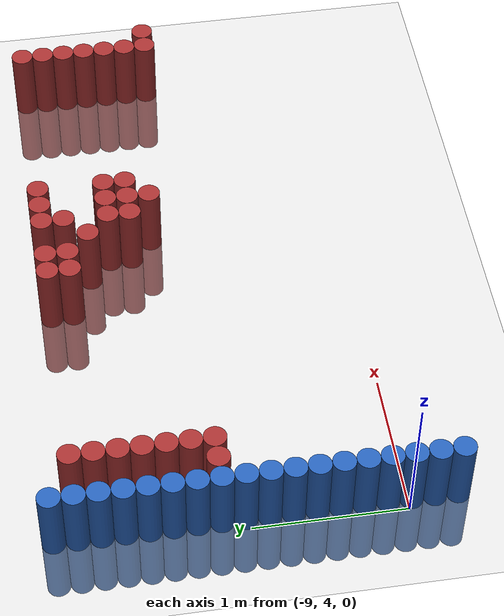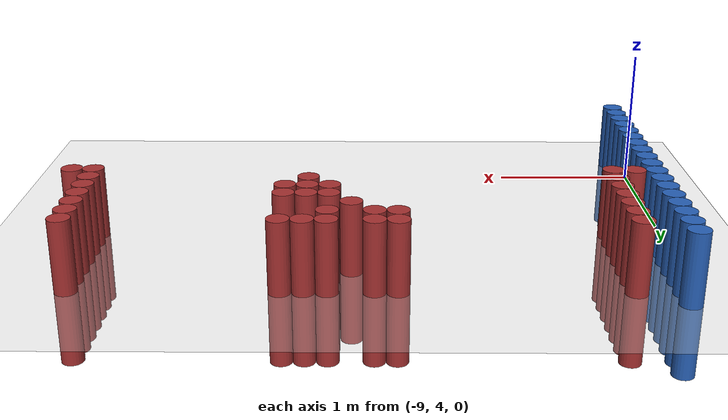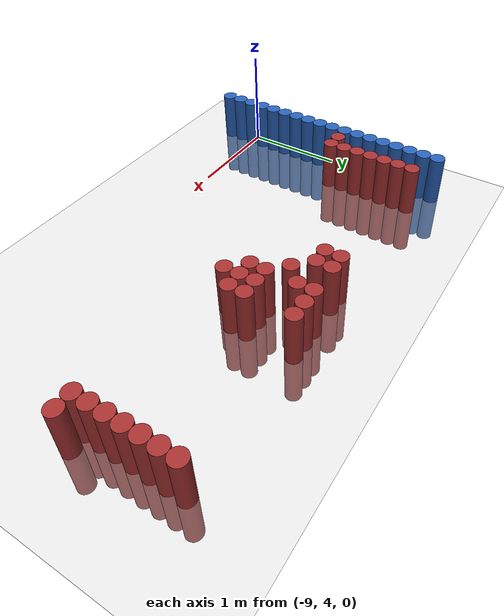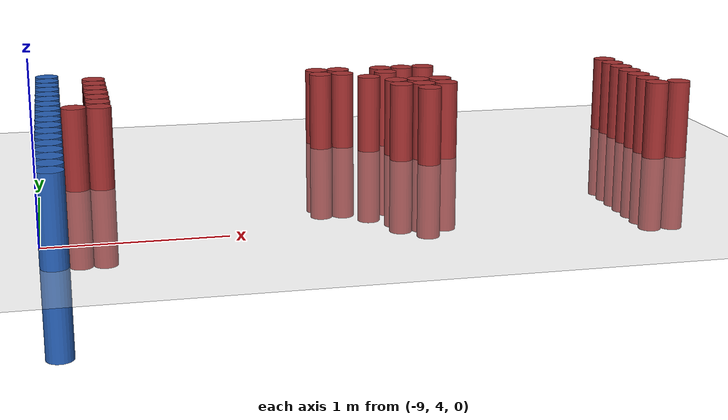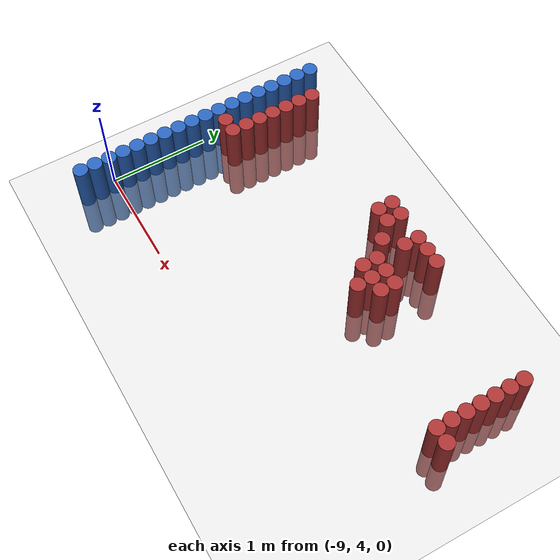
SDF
<sdf version="1.6">
 <world name="default">
  <model name="ground_plane">
   <static>1</static>
   <link name="link">
    <collision name="collision">
     <geometry><plane><normal>0 0 1</normal><size>100 100</size></plane></geometry>
     <surface><friction><ode><mu>100</mu><mu2>50</mu2></ode></friction></surface>
    </collision>
    <visual name="visual">
     <cast_shadows>0</cast_shadows>
     <geometry><plane><normal>0 0 1</normal><size>100 100</size></plane></geometry>
     <material>
      <script><uri>file://media/materials/scripts/gazebo.material</uri><name>Gazebo/Grey</name></script>
     </material>
    </visual>
   </link>
  </model>
  <model name="unit_cylinder_106">
   <static>1</static>
   <pose>-8.925000 3.675000 0.000000 0.000000 0.000000 0.000000</pose>
   <link name="link">
    <inertial>
     <mass>1</mass>
     <inertia><ixx>0.145833</ixx><ixy>0</ixy><ixz>0</ixz><iyy>0.145833</iyy><iyz>0</iyz><izz>0.125</izz></inertia>
    </inertial>
    <collision name="collision">
     <geometry><cylinder><radius>0.075000</radius><length>1</length></cylinder></geometry>
    </collision>
    <visual name="visual">
     <geometry><cylinder><radius>0.075000</radius><length>1</length></cylinder></geometry>
     <material>
      <ambient>0.152000 0.379000 0.720000 1</ambient>
      <diffuse>0.152000 0.379000 0.720000 1</diffuse>
     </material>
     <material>
      <script><name>Gazebo/Grey</name><uri>file://media/materials/scripts/gazebo.material</uri></script>
     </material>
    </visual>
   </link>
  </model>
  <model name="unit_cylinder_108">
   <static>1</static>
   <pose>-8.925000 3.825000 0.000000 0.000000 0.000000 0.000000</pose>
   <link name="link">
    <inertial>
     <mass>1</mass>
     <inertia><ixx>0.145833</ixx><ixy>0</ixy><ixz>0</ixz><iyy>0.145833</iyy><iyz>0</iyz><izz>0.125</izz></inertia>
    </inertial>
    <collision name="collision">
     <geometry><cylinder><radius>0.075000</radius><length>1</length></cylinder></geometry>
    </collision>
    <visual name="visual">
     <geometry><cylinder><radius>0.075000</radius><length>1</length></cylinder></geometry>
     <material>
      <ambient>0.152000 0.379000 0.720000 1</ambient>
      <diffuse>0.152000 0.379000 0.720000 1</diffuse>
     </material>
     <material>
      <script><name>Gazebo/Grey</name><uri>file://media/materials/scripts/gazebo.material</uri></script>
     </material>
    </visual>
   </link>
  </model>
  <model name="unit_cylinder_110">
   <static>1</static>
   <pose>-8.925000 3.975000 0.000000 0.000000 0.000000 0.000000</pose>
   <link name="link">
    <inertial>
     <mass>1</mass>
     <inertia><ixx>0.145833</ixx><ixy>0</ixy><ixz>0</ixz><iyy>0.145833</iyy><iyz>0</iyz><izz>0.125</izz></inertia>
    </inertial>
    <collision name="collision">
     <geometry><cylinder><radius>0.075000</radius><length>1</length></cylinder></geometry>
    </collision>
    <visual name="visual">
     <geometry><cylinder><radius>0.075000</radius><length>1</length></cylinder></geometry>
     <material>
      <ambient>0.152000 0.379000 0.720000 1</ambient>
      <diffuse>0.152000 0.379000 0.720000 1</diffuse>
     </material>
     <material>
      <script><name>Gazebo/Grey</name><uri>file://media/materials/scripts/gazebo.material</uri></script>
     </material>
    </visual>
   </link>
  </model>
  <model name="unit_cylinder_112">
   <static>1</static>
   <pose>-8.925000 4.125000 0.000000 0.000000 0.000000 0.000000</pose>
   <link name="link">
    <inertial>
     <mass>1</mass>
     <inertia><ixx>0.145833</ixx><ixy>0</ixy><ixz>0</ixz><iyy>0.145833</iyy><iyz>0</iyz><izz>0.125</izz></inertia>
    </inertial>
    <collision name="collision">
     <geometry><cylinder><radius>0.075000</radius><length>1</length></cylinder></geometry>
    </collision>
    <visual name="visual">
     <geometry><cylinder><radius>0.075000</radius><length>1</length></cylinder></geometry>
     <material>
      <ambient>0.152000 0.379000 0.720000 1</ambient>
      <diffuse>0.152000 0.379000 0.720000 1</diffuse>
     </material>
     <material>
      <script><name>Gazebo/Grey</name><uri>file://media/materials/scripts/gazebo.material</uri></script>
     </material>
    </visual>
   </link>
  </model>
  <model name="unit_cylinder_114">
   <static>1</static>
   <pose>-8.925000 4.275000 0.000000 0.000000 0.000000 0.000000</pose>
   <link name="link">
    <inertial>
     <mass>1</mass>
     <inertia><ixx>0.145833</ixx><ixy>0</ixy><ixz>0</ixz><iyy>0.145833</iyy><iyz>0</iyz><izz>0.125</izz></inertia>
    </inertial>
    <collision name="collision">
     <geometry><cylinder><radius>0.075000</radius><length>1</length></cylinder></geometry>
    </collision>
    <visual name="visual">
     <geometry><cylinder><radius>0.075000</radius><length>1</length></cylinder></geometry>
     <material>
      <ambient>0.152000 0.379000 0.720000 1</ambient>
      <diffuse>0.152000 0.379000 0.720000 1</diffuse>
     </material>
     <material>
      <script><name>Gazebo/Grey</name><uri>file://media/materials/scripts/gazebo.material</uri></script>
     </material>
    </visual>
   </link>
  </model>
  <model name="unit_cylinder_116">
   <static>1</static>
   <pose>-8.925000 4.425000 0.000000 0.000000 0.000000 0.000000</pose>
   <link name="link">
    <inertial>
     <mass>1</mass>
     <inertia><ixx>0.145833</ixx><ixy>0</ixy><ixz>0</ixz><iyy>0.145833</iyy><iyz>0</iyz><izz>0.125</izz></inertia>
    </inertial>
    <collision name="collision">
     <geometry><cylinder><radius>0.075000</radius><length>1</length></cylinder></geometry>
    </collision>
    <visual name="visual">
     <geometry><cylinder><radius>0.075000</radius><length>1</length></cylinder></geometry>
     <material>
      <ambient>0.152000 0.379000 0.720000 1</ambient>
      <diffuse>0.152000 0.379000 0.720000 1</diffuse>
     </material>
     <material>
      <script><name>Gazebo/Grey</name><uri>file://media/materials/scripts/gazebo.material</uri></script>
     </material>
    </visual>
   </link>
  </model>
  <model name="unit_cylinder_118">
   <static>1</static>
   <pose>-8.925000 4.575000 0.000000 0.000000 0.000000 0.000000</pose>
   <link name="link">
    <inertial>
     <mass>1</mass>
     <inertia><ixx>0.145833</ixx><ixy>0</ixy><ixz>0</ixz><iyy>0.145833</iyy><iyz>0</iyz><izz>0.125</izz></inertia>
    </inertial>
    <collision name="collision">
     <geometry><cylinder><radius>0.075000</radius><length>1</length></cylinder></geometry>
    </collision>
    <visual name="visual">
     <geometry><cylinder><radius>0.075000</radius><length>1</length></cylinder></geometry>
     <material>
      <ambient>0.152000 0.379000 0.720000 1</ambient>
      <diffuse>0.152000 0.379000 0.720000 1</diffuse>
     </material>
     <material>
      <script><name>Gazebo/Grey</name><uri>file://media/materials/scripts/gazebo.material</uri></script>
     </material>
    </visual>
   </link>
  </model>
  <model name="unit_cylinder_120">
   <static>1</static>
   <pose>-8.925000 4.725000 0.000000 0.000000 0.000000 0.000000</pose>
   <link name="link">
    <inertial>
     <mass>1</mass>
     <inertia><ixx>0.145833</ixx><ixy>0</ixy><ixz>0</ixz><iyy>0.145833</iyy><iyz>0</iyz><izz>0.125</izz></inertia>
    </inertial>
    <collision name="collision">
     <geometry><cylinder><radius>0.075000</radius><length>1</length></cylinder></geometry>
    </collision>
    <visual name="visual">
     <geometry><cylinder><radius>0.075000</radius><length>1</length></cylinder></geometry>
     <material>
      <ambient>0.152000 0.379000 0.720000 1</ambient>
      <diffuse>0.152000 0.379000 0.720000 1</diffuse>
     </material>
     <material>
      <script><name>Gazebo/Grey</name><uri>file://media/materials/scripts/gazebo.material</uri></script>
     </material>
    </visual>
   </link>
  </model>
  <model name="unit_cylinder_122">
   <static>1</static>
   <pose>-8.925000 4.875000 0.000000 0.000000 0.000000 0.000000</pose>
   <link name="link">
    <inertial>
     <mass>1</mass>
     <inertia><ixx>0.145833</ixx><ixy>0</ixy><ixz>0</ixz><iyy>0.145833</iyy><iyz>0</iyz><izz>0.125</izz></inertia>
    </inertial>
    <collision name="collision">
     <geometry><cylinder><radius>0.075000</radius><length>1</length></cylinder></geometry>
    </collision>
    <visual name="visual">
     <geometry><cylinder><radius>0.075000</radius><length>1</length></cylinder></geometry>
     <material>
      <ambient>0.152000 0.379000 0.720000 1</ambient>
      <diffuse>0.152000 0.379000 0.720000 1</diffuse>
     </material>
     <material>
      <script><name>Gazebo/Grey</name><uri>file://media/materials/scripts/gazebo.material</uri></script>
     </material>
    </visual>
   </link>
  </model>
  <model name="unit_cylinder_124">
   <static>1</static>
   <pose>-8.925000 5.025000 0.000000 0.000000 0.000000 0.000000</pose>
   <link name="link">
    <inertial>
     <mass>1</mass>
     <inertia><ixx>0.145833</ixx><ixy>0</ixy><ixz>0</ixz><iyy>0.145833</iyy><iyz>0</iyz><izz>0.125</izz></inertia>
    </inertial>
    <collision name="collision">
     <geometry><cylinder><radius>0.075000</radius><length>1</length></cylinder></geometry>
    </collision>
    <visual name="visual">
     <geometry><cylinder><radius>0.075000</radius><length>1</length></cylinder></geometry>
     <material>
      <ambient>0.152000 0.379000 0.720000 1</ambient>
      <diffuse>0.152000 0.379000 0.720000 1</diffuse>
     </material>
     <material>
      <script><name>Gazebo/Grey</name><uri>file://media/materials/scripts/gazebo.material</uri></script>
     </material>
    </visual>
   </link>
  </model>
  <model name="unit_cylinder_125">
   <static>1</static>
   <pose>-8.925000 5.175000 0.000000 0.000000 0.000000 0.000000</pose>
   <link name="link">
    <inertial>
     <mass>1</mass>
     <inertia><ixx>0.145833</ixx><ixy>0</ixy><ixz>0</ixz><iyy>0.145833</iyy><iyz>0</iyz><izz>0.125</izz></inertia>
    </inertial>
    <collision name="collision">
     <geometry><cylinder><radius>0.075000</radius><length>1</length></cylinder></geometry>
    </collision>
    <visual name="visual">
     <geometry><cylinder><radius>0.075000</radius><length>1</length></cylinder></geometry>
     <material>
      <ambient>0.152000 0.379000 0.720000 1</ambient>
      <diffuse>0.152000 0.379000 0.720000 1</diffuse>
     </material>
     <material>
      <script><name>Gazebo/Grey</name><uri>file://media/materials/scripts/gazebo.material</uri></script>
     </material>
    </visual>
   </link>
  </model>
  <model name="unit_cylinder_126">
   <static>1</static>
   <pose>-8.925000 5.325000 0.000000 0.000000 0.000000 0.000000</pose>
   <link name="link">
    <inertial>
     <mass>1</mass>
     <inertia><ixx>0.145833</ixx><ixy>0</ixy><ixz>0</ixz><iyy>0.145833</iyy><iyz>0</iyz><izz>0.125</izz></inertia>
    </inertial>
    <collision name="collision">
     <geometry><cylinder><radius>0.075000</radius><length>1</length></cylinder></geometry>
    </collision>
    <visual name="visual">
     <geometry><cylinder><radius>0.075000</radius><length>1</length></cylinder></geometry>
     <material>
      <ambient>0.152000 0.379000 0.720000 1</ambient>
      <diffuse>0.152000 0.379000 0.720000 1</diffuse>
     </material>
     <material>
      <script><name>Gazebo/Grey</name><uri>file://media/materials/scripts/gazebo.material</uri></script>
     </material>
    </visual>
   </link>
  </model>
  <model name="unit_cylinder_127">
   <static>1</static>
   <pose>-8.925000 5.475000 0.000000 0.000000 0.000000 0.000000</pose>
   <link name="link">
    <inertial>
     <mass>1</mass>
     <inertia><ixx>0.145833</ixx><ixy>0</ixy><ixz>0</ixz><iyy>0.145833</iyy><iyz>0</iyz><izz>0.125</izz></inertia>
    </inertial>
    <collision name="collision">
     <geometry><cylinder><radius>0.075000</radius><length>1</length></cylinder></geometry>
    </collision>
    <visual name="visual">
     <geometry><cylinder><radius>0.075000</radius><length>1</length></cylinder></geometry>
     <material>
      <ambient>0.152000 0.379000 0.720000 1</ambient>
      <diffuse>0.152000 0.379000 0.720000 1</diffuse>
     </material>
     <material>
      <script><name>Gazebo/Grey</name><uri>file://media/materials/scripts/gazebo.material</uri></script>
     </material>
    </visual>
   </link>
  </model>
  <model name="unit_cylinder_128">
   <static>1</static>
   <pose>-8.925000 5.625000 0.000000 0.000000 0.000000 0.000000</pose>
   <link name="link">
    <inertial>
     <mass>1</mass>
     <inertia><ixx>0.145833</ixx><ixy>0</ixy><ixz>0</ixz><iyy>0.145833</iyy><iyz>0</iyz><izz>0.125</izz></inertia>
    </inertial>
    <collision name="collision">
     <geometry><cylinder><radius>0.075000</radius><length>1</length></cylinder></geometry>
    </collision>
    <visual name="visual">
     <geometry><cylinder><radius>0.075000</radius><length>1</length></cylinder></geometry>
     <material>
      <ambient>0.152000 0.379000 0.720000 1</ambient>
      <diffuse>0.152000 0.379000 0.720000 1</diffuse>
     </material>
     <material>
      <script><name>Gazebo/Grey</name><uri>file://media/materials/scripts/gazebo.material</uri></script>
     </material>
    </visual>
   </link>
  </model>
  <model name="unit_cylinder_129">
   <static>1</static>
   <pose>-8.925000 5.775000 0.000000 0.000000 0.000000 0.000000</pose>
   <link name="link">
    <inertial>
     <mass>1</mass>
     <inertia><ixx>0.145833</ixx><ixy>0</ixy><ixz>0</ixz><iyy>0.145833</iyy><iyz>0</iyz><izz>0.125</izz></inertia>
    </inertial>
    <collision name="collision">
     <geometry><cylinder><radius>0.075000</radius><length>1</length></cylinder></geometry>
    </collision>
    <visual name="visual">
     <geometry><cylinder><radius>0.075000</radius><length>1</length></cylinder></geometry>
     <material>
      <ambient>0.152000 0.379000 0.720000 1</ambient>
      <diffuse>0.152000 0.379000 0.720000 1</diffuse>
     </material>
     <material>
      <script><name>Gazebo/Grey</name><uri>file://media/materials/scripts/gazebo.material</uri></script>
     </material>
    </visual>
   </link>
  </model>
  <model name="unit_cylinder_130">
   <static>1</static>
   <pose>-8.925000 5.925000 0.000000 0.000000 0.000000 0.000000</pose>
   <link name="link">
    <inertial>
     <mass>1</mass>
     <inertia><ixx>0.145833</ixx><ixy>0</ixy><ixz>0</ixz><iyy>0.145833</iyy><iyz>0</iyz><izz>0.125</izz></inertia>
    </inertial>
    <collision name="collision">
     <geometry><cylinder><radius>0.075000</radius><length>1</length></cylinder></geometry>
    </collision>
    <visual name="visual">
     <geometry><cylinder><radius>0.075000</radius><length>1</length></cylinder></geometry>
     <material>
      <ambient>0.152000 0.379000 0.720000 1</ambient>
      <diffuse>0.152000 0.379000 0.720000 1</diffuse>
     </material>
     <material>
      <script><name>Gazebo/Grey</name><uri>file://media/materials/scripts/gazebo.material</uri></script>
     </material>
    </visual>
   </link>
  </model>
  <model name="unit_cylinder_131">
   <static>1</static>
   <pose>-8.925000 6.075000 0.000000 0.000000 0.000000 0.000000</pose>
   <link name="link">
    <inertial>
     <mass>1</mass>
     <inertia><ixx>0.145833</ixx><ixy>0</ixy><ixz>0</ixz><iyy>0.145833</iyy><iyz>0</iyz><izz>0.125</izz></inertia>
    </inertial>
    <collision name="collision">
     <geometry><cylinder><radius>0.075000</radius><length>1</length></cylinder></geometry>
    </collision>
    <visual name="visual">
     <geometry><cylinder><radius>0.075000</radius><length>1</length></cylinder></geometry>
     <material>
      <ambient>0.152000 0.379000 0.720000 1</ambient>
      <diffuse>0.152000 0.379000 0.720000 1</diffuse>
     </material>
     <material>
      <script><name>Gazebo/Grey</name><uri>file://media/materials/scripts/gazebo.material</uri></script>
     </material>
    </visual>
   </link>
  </model>
  <model name="unit_cylinder_132">
   <static>1</static>
   <pose>-8.925000 6.225000 0.000000 0.000000 0.000000 0.000000</pose>
   <link name="link">
    <inertial>
     <mass>1</mass>
     <inertia><ixx>0.145833</ixx><ixy>0</ixy><ixz>0</ixz><iyy>0.145833</iyy><iyz>0</iyz><izz>0.125</izz></inertia>
    </inertial>
    <collision name="collision">
     <geometry><cylinder><radius>0.075000</radius><length>1</length></cylinder></geometry>
    </collision>
    <visual name="visual">
     <geometry><cylinder><radius>0.075000</radius><length>1</length></cylinder></geometry>
     <material>
      <ambient>0.152000 0.379000 0.720000 1</ambient>
      <diffuse>0.152000 0.379000 0.720000 1</diffuse>
     </material>
     <material>
      <script><name>Gazebo/Grey</name><uri>file://media/materials/scripts/gazebo.material</uri></script>
     </material>
    </visual>
   </link>
  </model>
  <model name="unit_cylinder_155">
   <static>1</static>
   <pose>-8.775000 5.175000 0.000000 0.000000 0.000000 0.000000</pose>
   <link name="link">
    <inertial>
     <mass>1</mass>
     <inertia><ixx>0.145833</ixx><ixy>0</ixy><ixz>0</ixz><iyy>0.145833</iyy><iyz>0</iyz><izz>0.125</izz></inertia>
    </inertial>
    <collision name="collision">
     <geometry><cylinder><radius>0.075000</radius><length>1</length></cylinder></geometry>
    </collision>
    <visual name="visual">
     <geometry><cylinder><radius>0.075000</radius><length>1</length></cylinder></geometry>
     <material>
      <ambient>0.648000 0.192000 0.192000 1</ambient>
      <diffuse>0.648000 0.192000 0.192000 1</diffuse>
     </material>
     <material>
      <script><name>Gazebo/Grey</name><uri>file://media/materials/scripts/gazebo.material</uri></script>
     </material>
    </visual>
   </link>
  </model>
  <model name="unit_cylinder_157">
   <static>1</static>
   <pose>-8.625000 5.175000 0.000000 0.000000 0.000000 0.000000</pose>
   <link name="link">
    <inertial>
     <mass>1</mass>
     <inertia><ixx>0.145833</ixx><ixy>0</ixy><ixz>0</ixz><iyy>0.145833</iyy><iyz>0</iyz><izz>0.125</izz></inertia>
    </inertial>
    <collision name="collision">
     <geometry><cylinder><radius>0.075000</radius><length>1</length></cylinder></geometry>
    </collision>
    <visual name="visual">
     <geometry><cylinder><radius>0.075000</radius><length>1</length></cylinder></geometry>
     <material>
      <ambient>0.648000 0.192000 0.192000 1</ambient>
      <diffuse>0.648000 0.192000 0.192000 1</diffuse>
     </material>
     <material>
      <script><name>Gazebo/Grey</name><uri>file://media/materials/scripts/gazebo.material</uri></script>
     </material>
    </visual>
   </link>
  </model>
  <model name="unit_cylinder_158">
   <static>1</static>
   <pose>-8.625000 5.325000 0.000000 0.000000 0.000000 0.000000</pose>
   <link name="link">
    <inertial>
     <mass>1</mass>
     <inertia><ixx>0.145833</ixx><ixy>0</ixy><ixz>0</ixz><iyy>0.145833</iyy><iyz>0</iyz><izz>0.125</izz></inertia>
    </inertial>
    <collision name="collision">
     <geometry><cylinder><radius>0.075000</radius><length>1</length></cylinder></geometry>
    </collision>
    <visual name="visual">
     <geometry><cylinder><radius>0.075000</radius><length>1</length></cylinder></geometry>
     <material>
      <ambient>0.648000 0.192000 0.192000 1</ambient>
      <diffuse>0.648000 0.192000 0.192000 1</diffuse>
     </material>
     <material>
      <script><name>Gazebo/Grey</name><uri>file://media/materials/scripts/gazebo.material</uri></script>
     </material>
    </visual>
   </link>
  </model>
  <model name="unit_cylinder_159">
   <static>1</static>
   <pose>-8.625000 5.475000 0.000000 0.000000 0.000000 0.000000</pose>
   <link name="link">
    <inertial>
     <mass>1</mass>
     <inertia><ixx>0.145833</ixx><ixy>0</ixy><ixz>0</ixz><iyy>0.145833</iyy><iyz>0</iyz><izz>0.125</izz></inertia>
    </inertial>
    <collision name="collision">
     <geometry><cylinder><radius>0.075000</radius><length>1</length></cylinder></geometry>
    </collision>
    <visual name="visual">
     <geometry><cylinder><radius>0.075000</radius><length>1</length></cylinder></geometry>
     <material>
      <ambient>0.648000 0.192000 0.192000 1</ambient>
      <diffuse>0.648000 0.192000 0.192000 1</diffuse>
     </material>
     <material>
      <script><name>Gazebo/Grey</name><uri>file://media/materials/scripts/gazebo.material</uri></script>
     </material>
    </visual>
   </link>
  </model>
  <model name="unit_cylinder_160">
   <static>1</static>
   <pose>-8.625000 5.625000 0.000000 0.000000 0.000000 0.000000</pose>
   <link name="link">
    <inertial>
     <mass>1</mass>
     <inertia><ixx>0.145833</ixx><ixy>0</ixy><ixz>0</ixz><iyy>0.145833</iyy><iyz>0</iyz><izz>0.125</izz></inertia>
    </inertial>
    <collision name="collision">
     <geometry><cylinder><radius>0.075000</radius><length>1</length></cylinder></geometry>
    </collision>
    <visual name="visual">
     <geometry><cylinder><radius>0.075000</radius><length>1</length></cylinder></geometry>
     <material>
      <ambient>0.648000 0.192000 0.192000 1</ambient>
      <diffuse>0.648000 0.192000 0.192000 1</diffuse>
     </material>
     <material>
      <script><name>Gazebo/Grey</name><uri>file://media/materials/scripts/gazebo.material</uri></script>
     </material>
    </visual>
   </link>
  </model>
  <model name="unit_cylinder_161">
   <static>1</static>
   <pose>-8.625000 5.775000 0.000000 0.000000 0.000000 0.000000</pose>
   <link name="link">
    <inertial>
     <mass>1</mass>
     <inertia><ixx>0.145833</ixx><ixy>0</ixy><ixz>0</ixz><iyy>0.145833</iyy><iyz>0</iyz><izz>0.125</izz></inertia>
    </inertial>
    <collision name="collision">
     <geometry><cylinder><radius>0.075000</radius><length>1</length></cylinder></geometry>
    </collision>
    <visual name="visual">
     <geometry><cylinder><radius>0.075000</radius><length>1</length></cylinder></geometry>
     <material>
      <ambient>0.648000 0.192000 0.192000 1</ambient>
      <diffuse>0.648000 0.192000 0.192000 1</diffuse>
     </material>
     <material>
      <script><name>Gazebo/Grey</name><uri>file://media/materials/scripts/gazebo.material</uri></script>
     </material>
    </visual>
   </link>
  </model>
  <model name="unit_cylinder_162">
   <static>1</static>
   <pose>-8.625000 5.925000 0.000000 0.000000 0.000000 0.000000</pose>
   <link name="link">
    <inertial>
     <mass>1</mass>
     <inertia><ixx>0.145833</ixx><ixy>0</ixy><ixz>0</ixz><iyy>0.145833</iyy><iyz>0</iyz><izz>0.125</izz></inertia>
    </inertial>
    <collision name="collision">
     <geometry><cylinder><radius>0.075000</radius><length>1</length></cylinder></geometry>
    </collision>
    <visual name="visual">
     <geometry><cylinder><radius>0.075000</radius><length>1</length></cylinder></geometry>
     <material>
      <ambient>0.648000 0.192000 0.192000 1</ambient>
      <diffuse>0.648000 0.192000 0.192000 1</diffuse>
     </material>
     <material>
      <script><name>Gazebo/Grey</name><uri>file://media/materials/scripts/gazebo.material</uri></script>
     </material>
    </visual>
   </link>
  </model>
  <model name="unit_cylinder_163">
   <static>1</static>
   <pose>-8.625000 6.075000 0.000000 0.000000 0.000000 0.000000</pose>
   <link name="link">
    <inertial>
     <mass>1</mass>
     <inertia><ixx>0.145833</ixx><ixy>0</ixy><ixz>0</ixz><iyy>0.145833</iyy><iyz>0</iyz><izz>0.125</izz></inertia>
    </inertial>
    <collision name="collision">
     <geometry><cylinder><radius>0.075000</radius><length>1</length></cylinder></geometry>
    </collision>
    <visual name="visual">
     <geometry><cylinder><radius>0.075000</radius><length>1</length></cylinder></geometry>
     <material>
      <ambient>0.648000 0.192000 0.192000 1</ambient>
      <diffuse>0.648000 0.192000 0.192000 1</diffuse>
     </material>
     <material>
      <script><name>Gazebo/Grey</name><uri>file://media/materials/scripts/gazebo.material</uri></script>
     </material>
    </visual>
   </link>
  </model>
  <model name="unit_cylinder_204">
   <static>1</static>
   <pose>-7.125000 5.925000 0.000000 0.000000 0.000000 0.000000</pose>
   <link name="link">
    <inertial>
     <mass>1</mass>
     <inertia><ixx>0.145833</ixx><ixy>0</ixy><ixz>0</ixz><iyy>0.145833</iyy><iyz>0</iyz><izz>0.125</izz></inertia>
    </inertial>
    <collision name="collision">
     <geometry><cylinder><radius>0.075000</radius><length>1</length></cylinder></geometry>
    </collision>
    <visual name="visual">
     <geometry><cylinder><radius>0.075000</radius><length>1</length></cylinder></geometry>
     <material>
      <ambient>0.648000 0.192000 0.192000 1</ambient>
      <diffuse>0.648000 0.192000 0.192000 1</diffuse>
     </material>
     <material>
      <script><name>Gazebo/Grey</name><uri>file://media/materials/scripts/gazebo.material</uri></script>
     </material>
    </visual>
   </link>
  </model>
  <model name="unit_cylinder_205">
   <static>1</static>
   <pose>-7.125000 6.075000 0.000000 0.000000 0.000000 0.000000</pose>
   <link name="link">
    <inertial>
     <mass>1</mass>
     <inertia><ixx>0.145833</ixx><ixy>0</ixy><ixz>0</ixz><iyy>0.145833</iyy><iyz>0</iyz><izz>0.125</izz></inertia>
    </inertial>
    <collision name="collision">
     <geometry><cylinder><radius>0.075000</radius><length>1</length></cylinder></geometry>
    </collision>
    <visual name="visual">
     <geometry><cylinder><radius>0.075000</radius><length>1</length></cylinder></geometry>
     <material>
      <ambient>0.648000 0.192000 0.192000 1</ambient>
      <diffuse>0.648000 0.192000 0.192000 1</diffuse>
     </material>
     <material>
      <script><name>Gazebo/Grey</name><uri>file://media/materials/scripts/gazebo.material</uri></script>
     </material>
    </visual>
   </link>
  </model>
  <model name="unit_cylinder_214">
   <static>1</static>
   <pose>-6.975000 5.925000 0.000000 0.000000 0.000000 0.000000</pose>
   <link name="link">
    <inertial>
     <mass>1</mass>
     <inertia><ixx>0.145833</ixx><ixy>0</ixy><ixz>0</ixz><iyy>0.145833</iyy><iyz>0</iyz><izz>0.125</izz></inertia>
    </inertial>
    <collision name="collision">
     <geometry><cylinder><radius>0.075000</radius><length>1</length></cylinder></geometry>
    </collision>
    <visual name="visual">
     <geometry><cylinder><radius>0.075000</radius><length>1</length></cylinder></geometry>
     <material>
      <ambient>0.648000 0.192000 0.192000 1</ambient>
      <diffuse>0.648000 0.192000 0.192000 1</diffuse>
     </material>
     <material>
      <script><name>Gazebo/Grey</name><uri>file://media/materials/scripts/gazebo.material</uri></script>
     </material>
    </visual>
   </link>
  </model>
  <model name="unit_cylinder_215">
   <static>1</static>
   <pose>-6.975000 6.075000 0.000000 0.000000 0.000000 0.000000</pose>
   <link name="link">
    <inertial>
     <mass>1</mass>
     <inertia><ixx>0.145833</ixx><ixy>0</ixy><ixz>0</ixz><iyy>0.145833</iyy><iyz>0</iyz><izz>0.125</izz></inertia>
    </inertial>
    <collision name="collision">
     <geometry><cylinder><radius>0.075000</radius><length>1</length></cylinder></geometry>
    </collision>
    <visual name="visual">
     <geometry><cylinder><radius>0.075000</radius><length>1</length></cylinder></geometry>
     <material>
      <ambient>0.648000 0.192000 0.192000 1</ambient>
      <diffuse>0.648000 0.192000 0.192000 1</diffuse>
     </material>
     <material>
      <script><name>Gazebo/Grey</name><uri>file://media/materials/scripts/gazebo.material</uri></script>
     </material>
    </visual>
   </link>
  </model>
  <model name="unit_cylinder_225">
   <static>1</static>
   <pose>-6.825000 5.775000 0.000000 0.000000 0.000000 0.000000</pose>
   <link name="link">
    <inertial>
     <mass>1</mass>
     <inertia><ixx>0.145833</ixx><ixy>0</ixy><ixz>0</ixz><iyy>0.145833</iyy><iyz>0</iyz><izz>0.125</izz></inertia>
    </inertial>
    <collision name="collision">
     <geometry><cylinder><radius>0.075000</radius><length>1</length></cylinder></geometry>
    </collision>
    <visual name="visual">
     <geometry><cylinder><radius>0.075000</radius><length>1</length></cylinder></geometry>
     <material>
      <ambient>0.648000 0.192000 0.192000 1</ambient>
      <diffuse>0.648000 0.192000 0.192000 1</diffuse>
     </material>
     <material>
      <script><name>Gazebo/Grey</name><uri>file://media/materials/scripts/gazebo.material</uri></script>
     </material>
    </visual>
   </link>
  </model>
  <model name="unit_cylinder_234">
   <static>1</static>
   <pose>-6.675000 5.475000 0.000000 0.000000 0.000000 0.000000</pose>
   <link name="link">
    <inertial>
     <mass>1</mass>
     <inertia><ixx>0.145833</ixx><ixy>0</ixy><ixz>0</ixz><iyy>0.145833</iyy><iyz>0</iyz><izz>0.125</izz></inertia>
    </inertial>
    <collision name="collision">
     <geometry><cylinder><radius>0.075000</radius><length>1</length></cylinder></geometry>
    </collision>
    <visual name="visual">
     <geometry><cylinder><radius>0.075000</radius><length>1</length></cylinder></geometry>
     <material>
      <ambient>0.648000 0.192000 0.192000 1</ambient>
      <diffuse>0.648000 0.192000 0.192000 1</diffuse>
     </material>
     <material>
      <script><name>Gazebo/Grey</name><uri>file://media/materials/scripts/gazebo.material</uri></script>
     </material>
    </visual>
   </link>
  </model>
  <model name="unit_cylinder_235">
   <static>1</static>
   <pose>-6.675000 5.625000 0.000000 0.000000 0.000000 0.000000</pose>
   <link name="link">
    <inertial>
     <mass>1</mass>
     <inertia><ixx>0.145833</ixx><ixy>0</ixy><ixz>0</ixz><iyy>0.145833</iyy><iyz>0</iyz><izz>0.125</izz></inertia>
    </inertial>
    <collision name="collision">
     <geometry><cylinder><radius>0.075000</radius><length>1</length></cylinder></geometry>
    </collision>
    <visual name="visual">
     <geometry><cylinder><radius>0.075000</radius><length>1</length></cylinder></geometry>
     <material>
      <ambient>0.648000 0.192000 0.192000 1</ambient>
      <diffuse>0.648000 0.192000 0.192000 1</diffuse>
     </material>
     <material>
      <script><name>Gazebo/Grey</name><uri>file://media/materials/scripts/gazebo.material</uri></script>
     </material>
    </visual>
   </link>
  </model>
  <model name="unit_cylinder_236">
   <static>1</static>
   <pose>-6.675000 5.925000 0.000000 0.000000 0.000000 0.000000</pose>
   <link name="link">
    <inertial>
     <mass>1</mass>
     <inertia><ixx>0.145833</ixx><ixy>0</ixy><ixz>0</ixz><iyy>0.145833</iyy><iyz>0</iyz><izz>0.125</izz></inertia>
    </inertial>
    <collision name="collision">
     <geometry><cylinder><radius>0.075000</radius><length>1</length></cylinder></geometry>
    </collision>
    <visual name="visual">
     <geometry><cylinder><radius>0.075000</radius><length>1</length></cylinder></geometry>
     <material>
      <ambient>0.648000 0.192000 0.192000 1</ambient>
      <diffuse>0.648000 0.192000 0.192000 1</diffuse>
     </material>
     <material>
      <script><name>Gazebo/Grey</name><uri>file://media/materials/scripts/gazebo.material</uri></script>
     </material>
    </visual>
   </link>
  </model>
  <model name="unit_cylinder_237">
   <static>1</static>
   <pose>-6.675000 6.075000 0.000000 0.000000 0.000000 0.000000</pose>
   <link name="link">
    <inertial>
     <mass>1</mass>
     <inertia><ixx>0.145833</ixx><ixy>0</ixy><ixz>0</ixz><iyy>0.145833</iyy><iyz>0</iyz><izz>0.125</izz></inertia>
    </inertial>
    <collision name="collision">
     <geometry><cylinder><radius>0.075000</radius><length>1</length></cylinder></geometry>
    </collision>
    <visual name="visual">
     <geometry><cylinder><radius>0.075000</radius><length>1</length></cylinder></geometry>
     <material>
      <ambient>0.648000 0.192000 0.192000 1</ambient>
      <diffuse>0.648000 0.192000 0.192000 1</diffuse>
     </material>
     <material>
      <script><name>Gazebo/Grey</name><uri>file://media/materials/scripts/gazebo.material</uri></script>
     </material>
    </visual>
   </link>
  </model>
  <model name="unit_cylinder_245">
   <static>1</static>
   <pose>-6.525000 5.325000 0.000000 0.000000 0.000000 0.000000</pose>
   <link name="link">
    <inertial>
     <mass>1</mass>
     <inertia><ixx>0.145833</ixx><ixy>0</ixy><ixz>0</ixz><iyy>0.145833</iyy><iyz>0</iyz><izz>0.125</izz></inertia>
    </inertial>
    <collision name="collision">
     <geometry><cylinder><radius>0.075000</radius><length>1</length></cylinder></geometry>
    </collision>
    <visual name="visual">
     <geometry><cylinder><radius>0.075000</radius><length>1</length></cylinder></geometry>
     <material>
      <ambient>0.648000 0.192000 0.192000 1</ambient>
      <diffuse>0.648000 0.192000 0.192000 1</diffuse>
     </material>
     <material>
      <script><name>Gazebo/Grey</name><uri>file://media/materials/scripts/gazebo.material</uri></script>
     </material>
    </visual>
   </link>
  </model>
  <model name="unit_cylinder_246">
   <static>1</static>
   <pose>-6.525000 5.475000 0.000000 0.000000 0.000000 0.000000</pose>
   <link name="link">
    <inertial>
     <mass>1</mass>
     <inertia><ixx>0.145833</ixx><ixy>0</ixy><ixz>0</ixz><iyy>0.145833</iyy><iyz>0</iyz><izz>0.125</izz></inertia>
    </inertial>
    <collision name="collision">
     <geometry><cylinder><radius>0.075000</radius><length>1</length></cylinder></geometry>
    </collision>
    <visual name="visual">
     <geometry><cylinder><radius>0.075000</radius><length>1</length></cylinder></geometry>
     <material>
      <ambient>0.648000 0.192000 0.192000 1</ambient>
      <diffuse>0.648000 0.192000 0.192000 1</diffuse>
     </material>
     <material>
      <script><name>Gazebo/Grey</name><uri>file://media/materials/scripts/gazebo.material</uri></script>
     </material>
    </visual>
   </link>
  </model>
  <model name="unit_cylinder_247">
   <static>1</static>
   <pose>-6.525000 5.625000 0.000000 0.000000 0.000000 0.000000</pose>
   <link name="link">
    <inertial>
     <mass>1</mass>
     <inertia><ixx>0.145833</ixx><ixy>0</ixy><ixz>0</ixz><iyy>0.145833</iyy><iyz>0</iyz><izz>0.125</izz></inertia>
    </inertial>
    <collision name="collision">
     <geometry><cylinder><radius>0.075000</radius><length>1</length></cylinder></geometry>
    </collision>
    <visual name="visual">
     <geometry><cylinder><radius>0.075000</radius><length>1</length></cylinder></geometry>
     <material>
      <ambient>0.648000 0.192000 0.192000 1</ambient>
      <diffuse>0.648000 0.192000 0.192000 1</diffuse>
     </material>
     <material>
      <script><name>Gazebo/Grey</name><uri>file://media/materials/scripts/gazebo.material</uri></script>
     </material>
    </visual>
   </link>
  </model>
  <model name="unit_cylinder_248">
   <static>1</static>
   <pose>-6.525000 6.075000 0.000000 0.000000 0.000000 0.000000</pose>
   <link name="link">
    <inertial>
     <mass>1</mass>
     <inertia><ixx>0.145833</ixx><ixy>0</ixy><ixz>0</ixz><iyy>0.145833</iyy><iyz>0</iyz><izz>0.125</izz></inertia>
    </inertial>
    <collision name="collision">
     <geometry><cylinder><radius>0.075000</radius><length>1</length></cylinder></geometry>
    </collision>
    <visual name="visual">
     <geometry><cylinder><radius>0.075000</radius><length>1</length></cylinder></geometry>
     <material>
      <ambient>0.648000 0.192000 0.192000 1</ambient>
      <diffuse>0.648000 0.192000 0.192000 1</diffuse>
     </material>
     <material>
      <script><name>Gazebo/Grey</name><uri>file://media/materials/scripts/gazebo.material</uri></script>
     </material>
    </visual>
   </link>
  </model>
  <model name="unit_cylinder_257">
   <static>1</static>
   <pose>-6.375000 5.475000 0.000000 0.000000 0.000000 0.000000</pose>
   <link name="link">
    <inertial>
     <mass>1</mass>
     <inertia><ixx>0.145833</ixx><ixy>0</ixy><ixz>0</ixz><iyy>0.145833</iyy><iyz>0</iyz><izz>0.125</izz></inertia>
    </inertial>
    <collision name="collision">
     <geometry><cylinder><radius>0.075000</radius><length>1</length></cylinder></geometry>
    </collision>
    <visual name="visual">
     <geometry><cylinder><radius>0.075000</radius><length>1</length></cylinder></geometry>
     <material>
      <ambient>0.648000 0.192000 0.192000 1</ambient>
      <diffuse>0.648000 0.192000 0.192000 1</diffuse>
     </material>
     <material>
      <script><name>Gazebo/Grey</name><uri>file://media/materials/scripts/gazebo.material</uri></script>
     </material>
    </visual>
   </link>
  </model>
  <model name="unit_cylinder_258">
   <static>1</static>
   <pose>-6.375000 5.625000 0.000000 0.000000 0.000000 0.000000</pose>
   <link name="link">
    <inertial>
     <mass>1</mass>
     <inertia><ixx>0.145833</ixx><ixy>0</ixy><ixz>0</ixz><iyy>0.145833</iyy><iyz>0</iyz><izz>0.125</izz></inertia>
    </inertial>
    <collision name="collision">
     <geometry><cylinder><radius>0.075000</radius><length>1</length></cylinder></geometry>
    </collision>
    <visual name="visual">
     <geometry><cylinder><radius>0.075000</radius><length>1</length></cylinder></geometry>
     <material>
      <ambient>0.648000 0.192000 0.192000 1</ambient>
      <diffuse>0.648000 0.192000 0.192000 1</diffuse>
     </material>
     <material>
      <script><name>Gazebo/Grey</name><uri>file://media/materials/scripts/gazebo.material</uri></script>
     </material>
    </visual>
   </link>
  </model>
  <model name="unit_cylinder_259">
   <static>1</static>
   <pose>-6.375000 6.075000 0.000000 0.000000 0.000000 0.000000</pose>
   <link name="link">
    <inertial>
     <mass>1</mass>
     <inertia><ixx>0.145833</ixx><ixy>0</ixy><ixz>0</ixz><iyy>0.145833</iyy><iyz>0</iyz><izz>0.125</izz></inertia>
    </inertial>
    <collision name="collision">
     <geometry><cylinder><radius>0.075000</radius><length>1</length></cylinder></geometry>
    </collision>
    <visual name="visual">
     <geometry><cylinder><radius>0.075000</radius><length>1</length></cylinder></geometry>
     <material>
      <ambient>0.648000 0.192000 0.192000 1</ambient>
      <diffuse>0.648000 0.192000 0.192000 1</diffuse>
     </material>
     <material>
      <script><name>Gazebo/Grey</name><uri>file://media/materials/scripts/gazebo.material</uri></script>
     </material>
    </visual>
   </link>
  </model>
  <model name="unit_cylinder_277">
   <static>1</static>
   <pose>-5.025000 5.175000 0.000000 0.000000 0.000000 0.000000</pose>
   <link name="link">
    <inertial>
     <mass>1</mass>
     <inertia><ixx>0.145833</ixx><ixy>0</ixy><ixz>0</ixz><iyy>0.145833</iyy><iyz>0</iyz><izz>0.125</izz></inertia>
    </inertial>
    <collision name="collision">
     <geometry><cylinder><radius>0.075000</radius><length>1</length></cylinder></geometry>
    </collision>
    <visual name="visual">
     <geometry><cylinder><radius>0.075000</radius><length>1</length></cylinder></geometry>
     <material>
      <ambient>0.648000 0.192000 0.192000 1</ambient>
      <diffuse>0.648000 0.192000 0.192000 1</diffuse>
     </material>
     <material>
      <script><name>Gazebo/Grey</name><uri>file://media/materials/scripts/gazebo.material</uri></script>
     </material>
    </visual>
   </link>
  </model>
  <model name="unit_cylinder_278">
   <static>1</static>
   <pose>-5.025000 5.325000 0.000000 0.000000 0.000000 0.000000</pose>
   <link name="link">
    <inertial>
     <mass>1</mass>
     <inertia><ixx>0.145833</ixx><ixy>0</ixy><ixz>0</ixz><iyy>0.145833</iyy><iyz>0</iyz><izz>0.125</izz></inertia>
    </inertial>
    <collision name="collision">
     <geometry><cylinder><radius>0.075000</radius><length>1</length></cylinder></geometry>
    </collision>
    <visual name="visual">
     <geometry><cylinder><radius>0.075000</radius><length>1</length></cylinder></geometry>
     <material>
      <ambient>0.648000 0.192000 0.192000 1</ambient>
      <diffuse>0.648000 0.192000 0.192000 1</diffuse>
     </material>
     <material>
      <script><name>Gazebo/Grey</name><uri>file://media/materials/scripts/gazebo.material</uri></script>
     </material>
    </visual>
   </link>
  </model>
  <model name="unit_cylinder_279">
   <static>1</static>
   <pose>-5.025000 5.475000 0.000000 0.000000 0.000000 0.000000</pose>
   <link name="link">
    <inertial>
     <mass>1</mass>
     <inertia><ixx>0.145833</ixx><ixy>0</ixy><ixz>0</ixz><iyy>0.145833</iyy><iyz>0</iyz><izz>0.125</izz></inertia>
    </inertial>
    <collision name="collision">
     <geometry><cylinder><radius>0.075000</radius><length>1</length></cylinder></geometry>
    </collision>
    <visual name="visual">
     <geometry><cylinder><radius>0.075000</radius><length>1</length></cylinder></geometry>
     <material>
      <ambient>0.648000 0.192000 0.192000 1</ambient>
      <diffuse>0.648000 0.192000 0.192000 1</diffuse>
     </material>
     <material>
      <script><name>Gazebo/Grey</name><uri>file://media/materials/scripts/gazebo.material</uri></script>
     </material>
    </visual>
   </link>
  </model>
  <model name="unit_cylinder_280">
   <static>1</static>
   <pose>-5.025000 5.625000 0.000000 0.000000 0.000000 0.000000</pose>
   <link name="link">
    <inertial>
     <mass>1</mass>
     <inertia><ixx>0.145833</ixx><ixy>0</ixy><ixz>0</ixz><iyy>0.145833</iyy><iyz>0</iyz><izz>0.125</izz></inertia>
    </inertial>
    <collision name="collision">
     <geometry><cylinder><radius>0.075000</radius><length>1</length></cylinder></geometry>
    </collision>
    <visual name="visual">
     <geometry><cylinder><radius>0.075000</radius><length>1</length></cylinder></geometry>
     <material>
      <ambient>0.648000 0.192000 0.192000 1</ambient>
      <diffuse>0.648000 0.192000 0.192000 1</diffuse>
     </material>
     <material>
      <script><name>Gazebo/Grey</name><uri>file://media/materials/scripts/gazebo.material</uri></script>
     </material>
    </visual>
   </link>
  </model>
  <model name="unit_cylinder_281">
   <static>1</static>
   <pose>-5.025000 5.775000 0.000000 0.000000 0.000000 0.000000</pose>
   <link name="link">
    <inertial>
     <mass>1</mass>
     <inertia><ixx>0.145833</ixx><ixy>0</ixy><ixz>0</ixz><iyy>0.145833</iyy><iyz>0</iyz><izz>0.125</izz></inertia>
    </inertial>
    <collision name="collision">
     <geometry><cylinder><radius>0.075000</radius><length>1</length></cylinder></geometry>
    </collision>
    <visual name="visual">
     <geometry><cylinder><radius>0.075000</radius><length>1</length></cylinder></geometry>
     <material>
      <ambient>0.648000 0.192000 0.192000 1</ambient>
      <diffuse>0.648000 0.192000 0.192000 1</diffuse>
     </material>
     <material>
      <script><name>Gazebo/Grey</name><uri>file://media/materials/scripts/gazebo.material</uri></script>
     </material>
    </visual>
   </link>
  </model>
  <model name="unit_cylinder_282">
   <static>1</static>
   <pose>-5.025000 5.925000 0.000000 0.000000 0.000000 0.000000</pose>
   <link name="link">
    <inertial>
     <mass>1</mass>
     <inertia><ixx>0.145833</ixx><ixy>0</ixy><ixz>0</ixz><iyy>0.145833</iyy><iyz>0</iyz><izz>0.125</izz></inertia>
    </inertial>
    <collision name="collision">
     <geometry><cylinder><radius>0.075000</radius><length>1</length></cylinder></geometry>
    </collision>
    <visual name="visual">
     <geometry><cylinder><radius>0.075000</radius><length>1</length></cylinder></geometry>
     <material>
      <ambient>0.648000 0.192000 0.192000 1</ambient>
      <diffuse>0.648000 0.192000 0.192000 1</diffuse>
     </material>
     <material>
      <script><name>Gazebo/Grey</name><uri>file://media/materials/scripts/gazebo.material</uri></script>
     </material>
    </visual>
   </link>
  </model>
  <model name="unit_cylinder_283">
   <static>1</static>
   <pose>-5.025000 6.075000 0.000000 0.000000 0.000000 0.000000</pose>
   <link name="link">
    <inertial>
     <mass>1</mass>
     <inertia><ixx>0.145833</ixx><ixy>0</ixy><ixz>0</ixz><iyy>0.145833</iyy><iyz>0</iyz><izz>0.125</izz></inertia>
    </inertial>
    <collision name="collision">
     <geometry><cylinder><radius>0.075000</radius><length>1</length></cylinder></geometry>
    </collision>
    <visual name="visual">
     <geometry><cylinder><radius>0.075000</radius><length>1</length></cylinder></geometry>
     <material>
      <ambient>0.648000 0.192000 0.192000 1</ambient>
      <diffuse>0.648000 0.192000 0.192000 1</diffuse>
     </material>
     <material>
      <script><name>Gazebo/Grey</name><uri>file://media/materials/scripts/gazebo.material</uri></script>
     </material>
    </visual>
   </link>
  </model>
  <model name="unit_cylinder_285">
   <static>1</static>
   <pose>-4.875000 5.175000 0.000000 0.000000 0.000000 0.000000</pose>
   <link name="link">
    <inertial>
     <mass>1</mass>
     <inertia><ixx>0.145833</ixx><ixy>0</ixy><ixz>0</ixz><iyy>0.145833</iyy><iyz>0</iyz><izz>0.125</izz></inertia>
    </inertial>
    <collision name="collision">
     <geometry><cylinder><radius>0.075000</radius><length>1</length></cylinder></geometry>
    </collision>
    <visual name="visual">
     <geometry><cylinder><radius>0.075000</radius><length>1</length></cylinder></geometry>
     <material>
      <ambient>0.648000 0.192000 0.192000 1</ambient>
      <diffuse>0.648000 0.192000 0.192000 1</diffuse>
     </material>
     <material>
      <script><name>Gazebo/Grey</name><uri>file://media/materials/scripts/gazebo.material</uri></script>
     </material>
    </visual>
   </link>
  </model>
 </world>
</sdf>
